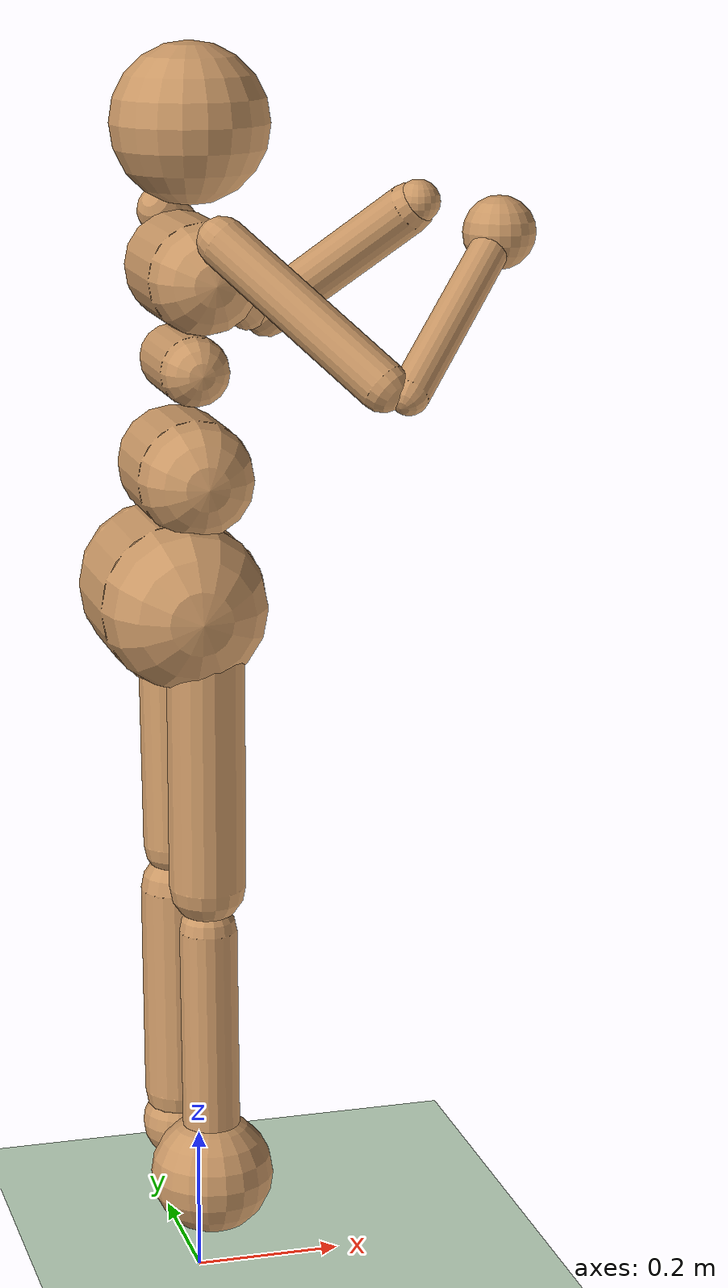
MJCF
<?xml version="1.0" encoding="utf-8"?>
<mujoco model="humanoid">
	<compiler angle="degree" inertiafromgeom="true"></compiler>
	<default>
		<joint armature="1" damping="0.8626904557704839" limited="true"></joint>
		<geom conaffinity="1" condim="1" contype="1" margin="0.001" material="geom" rgba="0.8 0.6 .4 1"></geom>
		<motor ctrllimited="true" ctrlrange="-.4 .4"></motor>
	</default>
	<option integrator="RK4" iterations="50" solver="PGS" timestep="0.003"></option>
	<size nkey="5" nuser_geom="1"></size>
	<visual>
		<map fogend="5" fogstart="3"></map>
	</visual>
	<asset>
		<texture builtin="gradient" height="100" rgb1=".4 .5 .6" rgb2="0 0 0" type="skybox" width="100"></texture>
		<texture builtin="flat" height="1278" mark="cross" markrgb="1 1 1" name="texgeom" random="0.01" rgb1="0.8 0.6 0.4" rgb2="0.8 0.6 0.4" type="cube" width="127"></texture>
		<texture builtin="checker" height="100" name="texplane" rgb1="0 0 0" rgb2="0.8 0.8 0.8" type="2d" width="100"></texture>
		<material name="MatPlane" reflectance="0.5" shininess="1" specular="1" texrepeat="60 60" texture="texplane"></material>
		<material name="geom" texture="texgeom" texuniform="true"></material>
	</asset>
	<worldbody>
		<light cutoff="100" diffuse="1 1 1" dir="-0 0 -1.3" directional="true" exponent="1" pos="0 0 1.3" specular=".1 .1 .1"></light>
		<geom condim="3" friction="1.143430608924403 0.0702212517892455 0.08668060407566106" material="MatPlane" name="floor" pos="0 0 0" rgba="0.8 0.9 0.8 1" size="21.33326129640244 23.92275673329749 0.1520657889891092" type="plane"></geom>
		<body name="torso" pos="0 0 1.4">
			<camera name="track" mode="trackcom" pos="0 -4 0" xyaxes="1 0 0 0 0 1"></camera>
			<joint armature="0" damping="0.0" limited="false" name="root" pos="0 0 0" stiffness="0.0" type="free"></joint>
			<geom fromto="0 -.07 0 0 .07 0" name="torso1" size="0.072320062948747" type="capsule"></geom>
			<geom name="head" pos="0 0 .19" size="0.104093505795605" type="sphere" user="258"></geom>
			<geom fromto="-.01 -.06 -.12 -.01 .06 -.12" name="uwaist" size="0.045681428963957854" type="capsule"></geom>
			<body name="lwaist" pos="-.01 0 -0.260" quat="1.000 0 -0.002 0">
				<geom fromto="0 -.06 0 0 .06 0" name="lwaist" size="0.0771055822832316" type="capsule"></geom>
				<joint armature="0.02" axis="0 0 1" damping="5.361600199593289" name="abdomen_z" pos="0 0 0.065" range="-45 45" stiffness="25.924123938189144" type="hinge"></joint>
				<joint armature="0.02" axis="0 1 0" damping="4.887022335873582" name="abdomen_y" pos="0 0 0.065" range="-75 30" stiffness="7.295500400381847" type="hinge"></joint>
				<body name="pelvis" pos="0 0 -0.165" quat="1.000 0 -0.002 0">
					<joint armature="0.02" axis="1 0 0" damping="5.341264009442245" name="abdomen_x" pos="0 0 0.1" range="-35 35" stiffness="12.156220539841549" type="hinge"></joint>
					<geom fromto="-.02 -.07 0 -.02 .07 0" name="butt" size="0.11072207715995608" type="capsule"></geom>
					<body name="right_thigh" pos="0 -0.1 -0.04">
						<joint armature="0.01" axis="1 0 0" damping="4.140181643993807" name="right_hip_x" pos="0 0 0" range="-25 5" stiffness="11.815848015382764" type="hinge"></joint>
						<joint armature="0.01" axis="0 0 1" damping="4.7518213577150235" name="right_hip_z" pos="0 0 0" range="-60 35" stiffness="10.909154498262017" type="hinge"></joint>
						<joint armature="0.0080" axis="0 1 0" damping="5.597173866509814" name="right_hip_y" pos="0 0 0" range="-110 20" stiffness="17.75756851767661" type="hinge"></joint>
						<geom fromto="0 0 0 0 0.01 -.34" name="right_thigh1" size="0.0512827634476445" type="capsule"></geom>
						<body name="right_shin" pos="0 0.01 -0.403">
							<joint armature="0.0060" axis="0 -1 0" name="right_knee" pos="0 0 .02" range="-160 -2" type="hinge"></joint>
							<geom fromto="0 0 0 0 0 -.3" name="right_shin1" size="0.038761500480050434" type="capsule"></geom>
							<body name="right_foot" pos="0 0 -0.45">
								<geom name="right_foot" pos="0 0 0.1" size="0.08331421574150927" type="sphere" user="0"></geom>
							</body>
						</body>
					</body>
					<body name="left_thigh" pos="0 0.1 -0.04">
						<joint armature="0.01" axis="-1 0 0" damping="3.9230513275032983" name="left_hip_x" pos="0 0 0" range="-25 5" stiffness="11.6980151428766" type="hinge"></joint>
						<joint armature="0.01" axis="0 0 -1" damping="5.415434168907451" name="left_hip_z" pos="0 0 0" range="-60 35" stiffness="7.299249920558813" type="hinge"></joint>
						<joint armature="0.01" axis="0 1 0" damping="5.594626176187409" name="left_hip_y" pos="0 0 0" range="-110 20" stiffness="15.637076879457847" type="hinge"></joint>
						<geom fromto="0 0 0 0 -0.01 -.34" name="left_thigh1" size="0.04607242095625322" type="capsule"></geom>
						<body name="left_shin" pos="0 -0.01 -0.403">
							<joint armature="0.0060" axis="0 -1 0" name="left_knee" pos="0 0 .02" range="-160 -2" stiffness="1.032892123584302" type="hinge"></joint>
							<geom fromto="0 0 0 0 0 -.3" name="left_shin1" size="0.05106901059669545" type="capsule"></geom>
							<body name="left_foot" pos="0 0 -0.45">
								<geom name="left_foot" type="sphere" size="0.05478547646737941" pos="0 0 0.1" user="0"></geom>
							</body>
						</body>
					</body>
				</body>
			</body>
			<body name="right_upper_arm" pos="0 -0.17 0.06">
				<joint armature="0.0068" axis="2 1 1" name="right_shoulder1" pos="0 0 0" range="-85 60" stiffness="0.9425265805343275" type="hinge"></joint>
				<joint armature="0.0051" axis="0 -1 1" name="right_shoulder2" pos="0 0 0" range="-85 60" stiffness="1.2015450535810532" type="hinge"></joint>
				<geom fromto="0 0 0 .16 -.16 -.16" name="right_uarm1" size="0.03219789930844703 0.15715268792757286" type="capsule"></geom>
				<body name="right_lower_arm" pos=".18 -.18 -.18">
					<joint armature="0.0028" axis="0 -1 1" name="right_elbow" pos="0 0 0" range="-90 50" stiffness="0.0" type="hinge"></joint>
					<geom fromto="0.01 0.01 0.01 .17 .17 .17" name="right_larm" size="0.025530679218144194" type="capsule"></geom>
					<geom name="right_hand" pos=".18 .18 .18" size="0.046763247098869594" type="sphere"></geom>
					<camera pos="0 0 0"></camera>
				</body>
			</body>
			<body name="left_upper_arm" pos="0 0.17 0.06">
				<joint armature="0.0068" axis="2 -1 1" name="left_shoulder1" pos="0 0 0" range="-60 85" stiffness="0.8922147348237424" type="hinge"></joint>
				<joint armature="0.0051" axis="0 1 1" name="left_shoulder2" pos="0 0 0" range="-60 85" stiffness="0.8388084807388521" type="hinge"></joint>
				<geom fromto="0 0 0 .16 .16 -.16" name="left_uarm1" size="0.03293983874380028 0.1295249700099479" type="capsule"></geom>
				<body name="left_lower_arm" pos=".18 .18 -.18">
					<joint armature="0.0028" axis="0 -1 -1" name="left_elbow" pos="0 0 0" range="-90 50" stiffness="0.0" type="hinge"></joint>
					<geom fromto="0.01 -0.01 0.01 .17 -.17 .17" name="left_larm" size="0.03531740411926011" type="capsule"></geom>
					<geom name="left_hand" pos=".18 -.18 .18" size="0.03038573173340927" type="sphere"></geom>
				</body>
			</body>
		</body>
	</worldbody>
	<tendon>
		<fixed name="left_hipknee">
			<joint coef="-1" joint="left_hip_y"></joint>
			<joint coef="1" joint="left_knee"></joint>
		</fixed>
		<fixed name="right_hipknee">
			<joint coef="-1" joint="right_hip_y"></joint>
			<joint coef="1" joint="right_knee"></joint>
		</fixed>
	</tendon>
	<actuator>
		<motor gear="100" joint="abdomen_y" name="abdomen_y"></motor>
		<motor gear="100" joint="abdomen_z" name="abdomen_z"></motor>
		<motor gear="100" joint="abdomen_x" name="abdomen_x"></motor>
		<motor gear="100" joint="right_hip_x" name="right_hip_x"></motor>
		<motor gear="100" joint="right_hip_z" name="right_hip_z"></motor>
		<motor gear="300" joint="right_hip_y" name="right_hip_y"></motor>
		<motor gear="200" joint="right_knee" name="right_knee"></motor>
		<motor gear="100" joint="left_hip_x" name="left_hip_x"></motor>
		<motor gear="100" joint="left_hip_z" name="left_hip_z"></motor>
		<motor gear="300" joint="left_hip_y" name="left_hip_y"></motor>
		<motor gear="200" joint="left_knee" name="left_knee"></motor>
		<motor gear="25" joint="right_shoulder1" name="right_shoulder1"></motor>
		<motor gear="25" joint="right_shoulder2" name="right_shoulder2"></motor>
		<motor gear="25" joint="right_elbow" name="right_elbow"></motor>
		<motor gear="25" joint="left_shoulder1" name="left_shoulder1"></motor>
		<motor gear="25" joint="left_shoulder2" name="left_shoulder2"></motor>
		<motor gear="25" joint="left_elbow" name="left_elbow"></motor>
	</actuator>
</mujoco>
